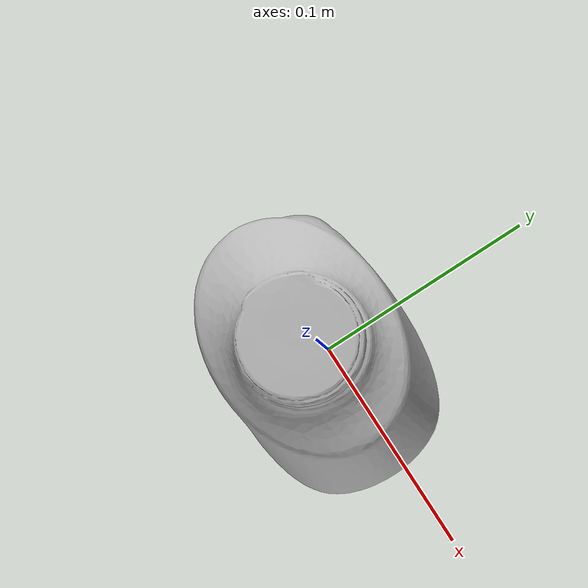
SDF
<?xml version="1.0"?>
<sdf version="1.6">
  <model name="bleach_cleanser">
    <link name="link">
      <inertial>
        <mass>1.131</mass>
        <inertia>
          <ixx>0.006288831</ixx>
          <ixy>0.0</ixy>
          <ixz>0.0</ixz>
          <iyy>0.006795802</iyy>
          <iyz>0.0</iyz>
          <izz>0.001303383</izz>
        </inertia>
        <pose>0 0 0.125 0 0 0</pose>
      </inertial>
      <collision name="collision">
        <pose>0.02 -0.012 0 0 0 0</pose>
        <geometry>
          <mesh>
            <uri>model://bleach_cleanser/meshes/nontextured.stl</uri>
          </mesh>
        </geometry>
      </collision>
      <visual name="visual">
        <pose>0.02 -0.012 0 0 0 0</pose>
        <geometry>
          <mesh>
            <uri>model://bleach_cleanser/meshes/textured.dae</uri>
          </mesh>
        </geometry>
      </visual>
    </link>
  </model>
</sdf>
